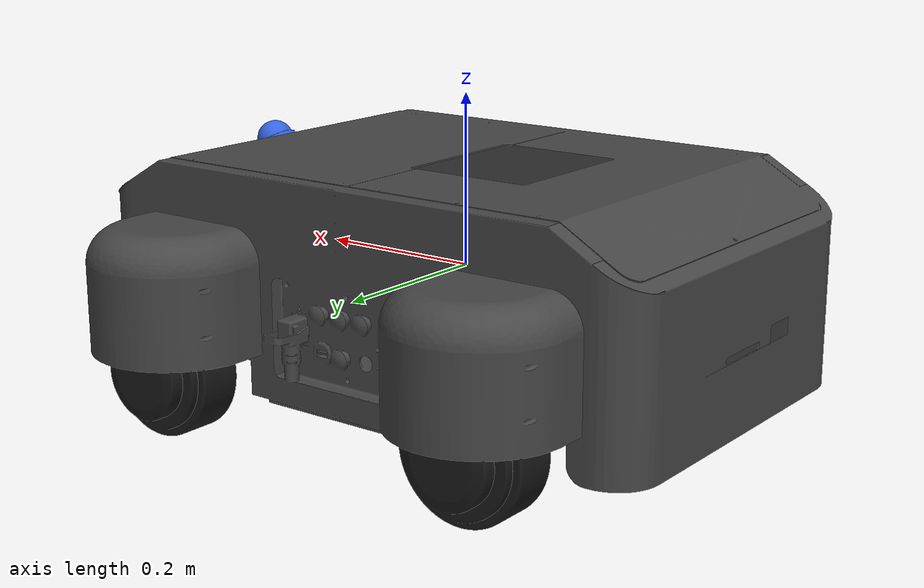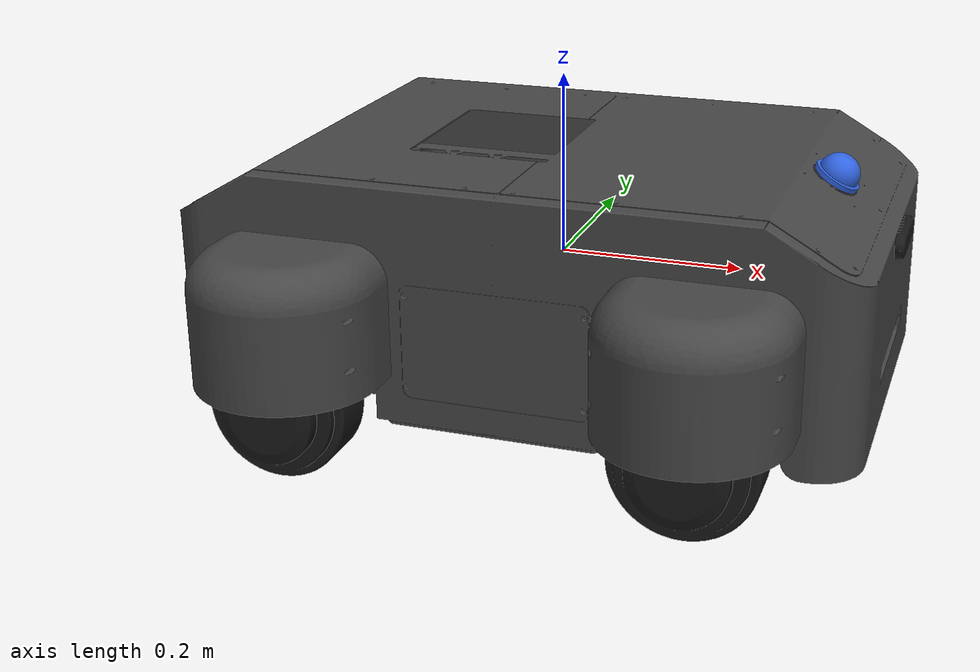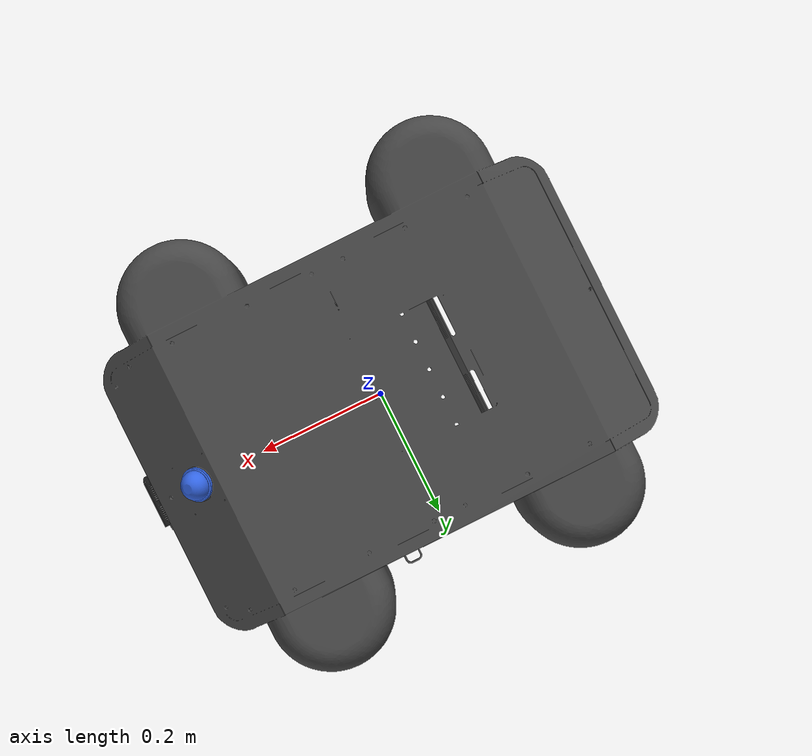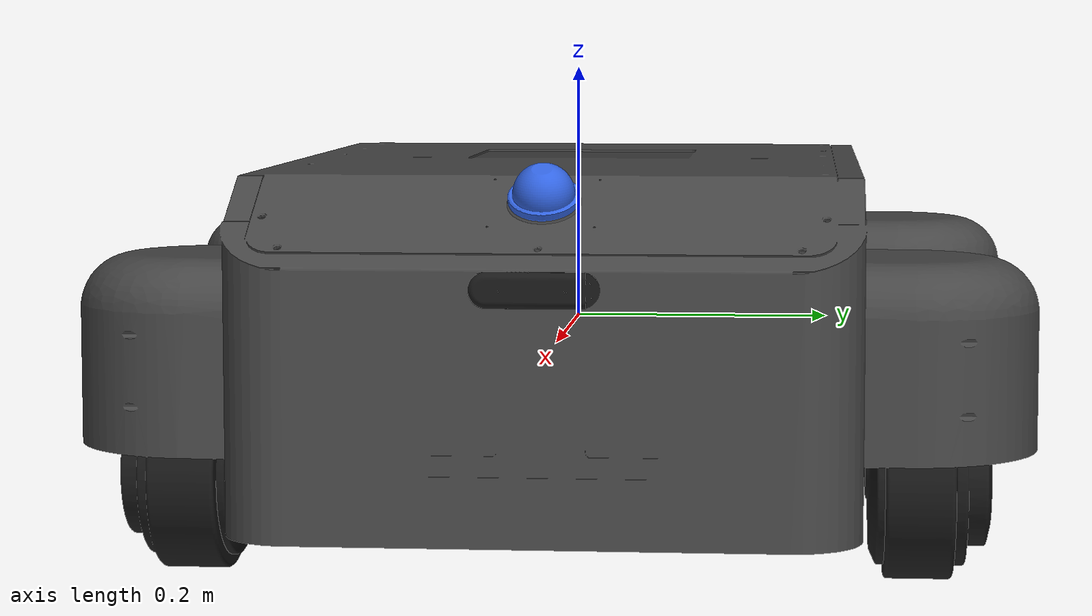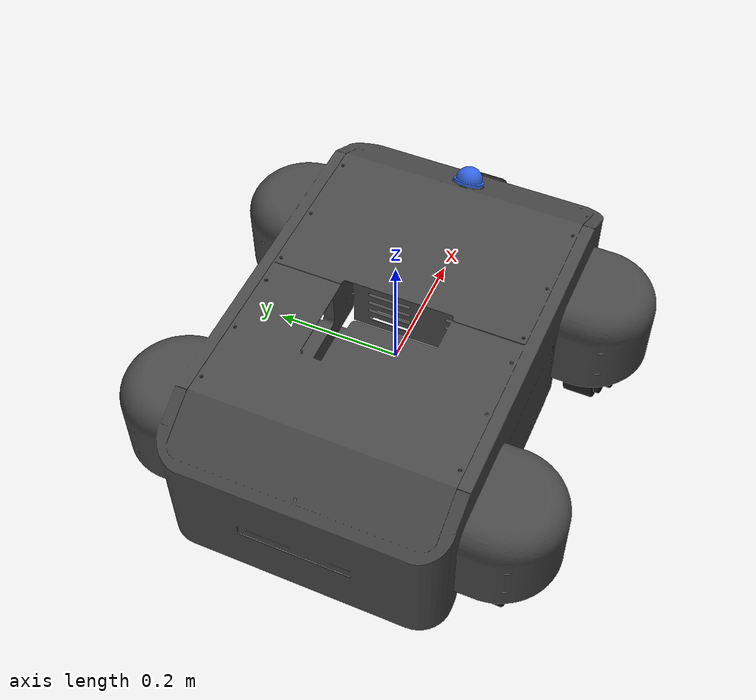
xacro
<?xml version="1.0"?>
<!--
  @Desc   四转四驱舵轮底盘 URDF
          转向：灵足时代 RS06（CAN5，扩展帧）
          驱动：和利时 UM 系列伺服轮毂一体机（CAN4，CANopen CiA402 PV 速度模式）
          机械尺寸：wheel_radius=0.075m，wheel_width=0.06m，轮距 0.547m，轴距 0.42m
-->

<robot xmlns:xacro="http://www.ros.org/wiki/xacro" name="swerve_chassis">

  <xacro:arg name="use_gazebo" default="false"/>  <!-- 保留参数兼容，实车始终 false -->
  <xacro:arg name="use_mock" default="false"/>
  <xacro:arg name="steering_can_interface" default="can5"/>
  <xacro:arg name="driving_can_interface" default="can4"/>
  <xacro:arg name="controllers_file" default=""/>
  <xacro:arg name="robot_param_node" default="robot_state_publisher"/>

  <xacro:property name="wheel_radius" value="0.075"/>
  <xacro:property name="wheel_width" value="0.06"/>
  <xacro:property name="wheelbase" value="0.42"/>
  <xacro:property name="track_width" value="0.547"/>
  <xacro:property name="half_wheelbase" value="${wheelbase / 2.0}"/>
  <xacro:property name="half_track" value="${track_width / 2.0}"/>

  <xacro:property name="chassis_length" value="0.50"/>
  <xacro:property name="chassis_width" value="0.40"/>
  <xacro:property name="chassis_height" value="0.14"/>
  <xacro:property name="chassis_mass" value="20.0"/>

  <xacro:property name="steering_link_height" value="0.05"/>
  <xacro:property name="steering_link_radius" value="0.03"/>
  <xacro:property name="steering_mass" value="0.5"/>
  <xacro:property name="wheel_mass" value="2.0"/>
  <xacro:property name="mid360_mass" value="0.35"/>
  <!-- Livox MID-360 STL（毫米）；仅 visual；mid360_joint 安装位与惯量不变 -->
  <xacro:property name="mid360_mesh_scale" value="0.001 0.001 0.001"/>
  <xacro:property name="mid360_visual_xyz" value="-0.0328 0.0346 -0.0435"/>
  <xacro:property name="mid360_visual_rpy" value="1.5708 0 0"/>
  <xacro:property name="d435_mass" value="0.10"/>
  <!-- Intel RealSense D435 STL（毫米）；仅替换 visual，d435_joint / 惯量不变 -->
  <xacro:property name="d435_mesh_scale" value="0.001 0.001 0.001"/>
  <!-- rpy: 先 Rx 对齐 CAD，再绕 Z（蓝轴）转 -90° 使 X↔Y（与 +90° 反向）；xyz 为质心补偿 -->
  <xacro:property name="d435_visual_xyz" value="0.0152 0.0447 -0.0129"/>
  <xacro:property name="d435_visual_rpy" value="1.5708 0 ${-pi/2}"/>

  <!-- 四轮 mesh：毫米 scale；STL 原点在角点，须 visual/collision 的 xyz 把质心挪到 link 原点（勿用 scale 负值镜像，会把偏心网格甩飞） -->
  <xacro:property name="wheel_mesh_scale" value="0.001 0.001 0.001"/>
  <!-- 由 fl_wheel_link.STL 质心 (~45,75,75)mm 与 rpy 推算，使网格中心落在 wheel_link 原点 -->
  <!-- 两套 visual 姿态：一侧 rpy=pi/2，另一侧 rpy=3pi/2（绕 Z 差 180°）；按 RViz 挂到 fl/bl 与 fr/br -->
  <xacro:property name="wheel_visual_xyz_a" value="-0.075 -0.045 -0.075"/>
  <xacro:property name="wheel_visual_rpy_a" value="1.5708 0 ${pi/2}"/>
  <xacro:property name="wheel_visual_xyz_b" value="0.075 0.045 -0.075"/>
  <xacro:property name="wheel_visual_rpy_b" value="1.5708 0 ${3*pi/2}"/>

  <xacro:macro name="box_inertia" params="m x y z">
    <inertial>
      <mass value="${m}"/>
      <inertia ixx="${m*(y*y+z*z)/12.0}" ixy="0" ixz="0"
               iyy="${m*(x*x+z*z)/12.0}" iyz="0"
               izz="${m*(x*x+y*y)/12.0}"/>
    </inertial>
  </xacro:macro>

  <xacro:macro name="cylinder_inertia" params="m r h">
    <inertial>
      <mass value="${m}"/>
      <inertia ixx="${m*(3*r*r+h*h)/12.0}" ixy="0" ixz="0"
               iyy="${m*(3*r*r+h*h)/12.0}" iyz="0"
               izz="${m*r*r/2.0}"/>
    </inertial>
  </xacro:macro>

  <xacro:macro name="swerve_module" params="prefix x y motor_id direction wheel_visual_xyz wheel_visual_rpy">

    <joint name="${prefix}_steering_joint" type="revolute">
      <parent link="base_link"/>
      <child link="${prefix}_steering_link"/>
      <origin xyz="${x} ${y} ${-(chassis_height/2.0)}" rpy="0 0 0"/>
      <axis xyz="0 0 1"/>
      <limit lower="-1.5708" upper="1.5708" effort="10" velocity="10"/>
    </joint>

    <!-- 转向节无 visual（舵机被外壳遮挡）；仅保留 collision 圆柱，仿真/惯量与改前一致 -->
    <link name="${prefix}_steering_link">
      <collision>
        <geometry>
          <cylinder radius="${steering_link_radius}" length="${steering_link_height}"/>
        </geometry>
      </collision>
      <xacro:cylinder_inertia m="${steering_mass}" r="${steering_link_radius}" h="${steering_link_height}"/>
    </link>

    <joint name="${prefix}_wheel_joint" type="continuous">
      <parent link="${prefix}_steering_link"/>
      <child link="${prefix}_wheel_link"/>
      <origin xyz="0 0 ${-steering_link_height/2.0}" rpy="0 0 0"/>
      <axis xyz="0 1 0"/>
    </joint>

    <link name="${prefix}_wheel_link">
      <visual>
        <origin xyz="${wheel_visual_xyz}" rpy="${wheel_visual_rpy}"/>
        <geometry>
          <mesh filename="package://swerve_description/meshes/${prefix}_wheel_link.STL" scale="${wheel_mesh_scale}"/>
        </geometry>
        <material name="black">
          <color rgba="0.1 0.1 0.1 1.0"/>
        </material>
      </visual>
      <collision>
        <origin xyz="${wheel_visual_xyz}" rpy="${wheel_visual_rpy}"/>
        <geometry>
          <mesh filename="package://swerve_description/meshes/${prefix}_wheel_link.STL" scale="${wheel_mesh_scale}"/>
        </geometry>
      </collision>
      <xacro:cylinder_inertia m="${wheel_mass}" r="${wheel_radius}" h="${wheel_width}"/>
    </link>
  </xacro:macro>

  <link name="base_footprint"/>

  <xacro:property name="base_link_z" value="${wheel_radius + steering_link_height/2.0 + chassis_height/2.0}"/>

  <joint name="base_footprint_joint" type="fixed">
    <parent link="base_link"/>
    <child link="base_footprint"/>
    <origin xyz="0 0 ${-base_link_z}" rpy="0 0 0"/>
  </joint>

  <!-- 底座外壳 STL：先绕 X 转 90° 试放平（原导入为竖立）；仅 visual，collision 仍为方盒 -->
  <xacro:property name="base_shell_visual_rpy" value="1.5708 0 0"/>

  <link name="base_link">
    <visual>
      <origin xyz="0 0 0" rpy="${base_shell_visual_rpy}"/>
      <geometry>
        <mesh filename="package://swerve_description/meshes/base_link.STL" scale="1 1 1"/>
      </geometry>
      <material name="base_shell_grey">
        <color rgba="0.28 0.28 0.28 1.0"/>
      </material>
    </visual>
    <collision>
      <origin xyz="0 0 0" rpy="0 0 0"/>
      <geometry>
        <box size="${chassis_length} ${chassis_width} ${chassis_height}"/>
      </geometry>
    </collision>
    <inertial>
      <origin xyz="0 0 0" rpy="0 0 0"/>
      <mass value="${chassis_mass}"/>
      <inertia ixx="${chassis_mass*(chassis_width*chassis_width+chassis_height*chassis_height)/12.0}" ixy="0" ixz="0"
               iyy="${chassis_mass*(chassis_length*chassis_length+chassis_height*chassis_height)/12.0}" iyz="0"
               izz="${chassis_mass*(chassis_length*chassis_length+chassis_width*chassis_width)/12.0}"/>
    </inertial>
  </link>

  <xacro:swerve_module prefix="fl" x="${half_wheelbase}" y="${half_track}" motor_id="5" direction="1"
    wheel_visual_xyz="${wheel_visual_xyz_b}" wheel_visual_rpy="${wheel_visual_rpy_b}"/>
  <xacro:swerve_module prefix="fr" x="${half_wheelbase}" y="${-half_track}" motor_id="6" direction="1"
    wheel_visual_xyz="${wheel_visual_xyz_a}" wheel_visual_rpy="${wheel_visual_rpy_a}"/>
  <xacro:swerve_module prefix="bl" x="${-half_wheelbase}" y="${half_track}" motor_id="7" direction="1"
    wheel_visual_xyz="${wheel_visual_xyz_b}" wheel_visual_rpy="${wheel_visual_rpy_b}"/>
  <xacro:swerve_module prefix="br" x="${-half_wheelbase}" y="${-half_track}" motor_id="8" direction="1"
    wheel_visual_xyz="${wheel_visual_xyz_a}" wheel_visual_rpy="${wheel_visual_rpy_a}"/>

  <joint name="mid360_joint" type="fixed">
    <parent link="base_link"/>
    <child link="mid360_link"/>
    <origin xyz="${half_wheelbase + 0.09} 0 ${chassis_height/2.0 + 0.05}" rpy="-0.5236 0 -1.5708"/>
  </joint>
  <link name="mid360_link">
    <visual>
      <origin xyz="${mid360_visual_xyz}" rpy="${mid360_visual_rpy}"/>
      <geometry>
        <mesh filename="package://swerve_description/meshes/mid360_link.STL" scale="${mid360_mesh_scale}"/>
      </geometry>
      <material name="mid360_color">
        <color rgba="0.2 0.4 0.9 1.0"/>
      </material>
    </visual>
    <xacro:cylinder_inertia m="${mid360_mass}" r="0.035" h="0.04"/>
  </link>

  <joint name="livox_frame_joint" type="fixed">
    <parent link="mid360_link"/>
    <child link="livox_frame"/>
    <origin xyz="0 0 0" rpy="0 0 0"/>
  </joint>
  <link name="livox_frame"/>

  <joint name="d435_joint" type="fixed">
    <parent link="base_link"/>
    <child link="d435_link"/>
    <origin xyz="0.36 0 0.055" rpy="0 0 0"/>
  </joint>
  <link name="d435_link">
    <visual>
      <origin xyz="${d435_visual_xyz}" rpy="${d435_visual_rpy}"/>
      <geometry>
        <mesh filename="package://swerve_description/meshes/d435_link.STL" scale="${d435_mesh_scale}"/>
      </geometry>
      <material name="d435_color">
        <color rgba="0.1 0.1 0.1 1.0"/>
      </material>
    </visual>
    <xacro:box_inertia m="${d435_mass}" x="0.025" y="0.090" z="0.025"/>
  </link>

  <!-- RealSense driver compatibility frames. Keep d435_link as the physical mount
       while exposing the frame names used by existing RViz, Nav2, and recording nodes. -->
  <joint name="camera_link_joint" type="fixed">
    <parent link="d435_link"/>
    <child link="camera_link"/>
    <origin xyz="0 0 0" rpy="0 0 0"/>
  </joint>
  <link name="camera_link"/>

  <joint name="d435_depth_joint" type="fixed">
    <parent link="d435_link"/>
    <child link="d435_depth_frame"/>
    <origin xyz="0 0 0" rpy="0 0 0"/>
  </joint>
  <link name="d435_depth_frame"/>

  <joint name="d435_depth_optical_joint" type="fixed">
    <parent link="d435_depth_frame"/>
    <child link="d435_depth_optical_frame"/>
    <origin xyz="0 0 0" rpy="${-pi/2} 0 ${-pi/2}"/>
  </joint>
  <link name="d435_depth_optical_frame"/>

  <joint name="d435_color_joint" type="fixed">
    <parent link="d435_link"/>
    <child link="d435_color_frame"/>
    <origin xyz="0 0 0" rpy="0 0 0"/>
  </joint>
  <link name="d435_color_frame"/>

  <joint name="d435_color_optical_joint" type="fixed">
    <parent link="d435_color_frame"/>
    <child link="d435_color_optical_frame"/>
    <origin xyz="0 0 0" rpy="${-pi/2} 0 ${-pi/2}"/>
  </joint>
  <link name="d435_color_optical_frame"/>

  <joint name="camera_depth_joint" type="fixed">
    <parent link="camera_link"/>
    <child link="camera_depth_frame"/>
    <origin xyz="0 0 0" rpy="0 0 0"/>
  </joint>
  <link name="camera_depth_frame"/>

  <joint name="camera_depth_optical_joint" type="fixed">
    <parent link="camera_depth_frame"/>
    <child link="camera_depth_optical_frame"/>
    <origin xyz="0 0 0" rpy="${-pi/2} 0 ${-pi/2}"/>
  </joint>
  <link name="camera_depth_optical_frame"/>

  <joint name="camera_rgb_joint" type="fixed">
    <parent link="camera_link"/>
    <child link="camera_rgb_frame"/>
    <origin xyz="0 0 0" rpy="0 0 0"/>
  </joint>
  <link name="camera_rgb_frame"/>

  <joint name="camera_rgb_optical_joint" type="fixed">
    <parent link="camera_rgb_frame"/>
    <child link="camera_rgb_optical_frame"/>
    <origin xyz="0 0 0" rpy="${-pi/2} 0 ${-pi/2}"/>
  </joint>
  <link name="camera_rgb_optical_frame"/>

  <joint name="imu_joint" type="fixed">
    <parent link="mid360_link"/>
    <child link="imu_link"/>
    <origin xyz="0 0 0" rpy="0 0 0"/>
  </joint>
  <link name="imu_link"/>

  <joint name="gps_joint" type="fixed">
    <parent link="base_link"/>
    <child link="gps_link"/>
    <origin xyz="0.06 0 0.24" rpy="0 0 0"/>
  </joint>
  <link name="gps_link"/>

  <xacro:include filename="$(find swerve_description)/urdf/swerve_ros2_control.urdf.xacro"/>

</robot>
